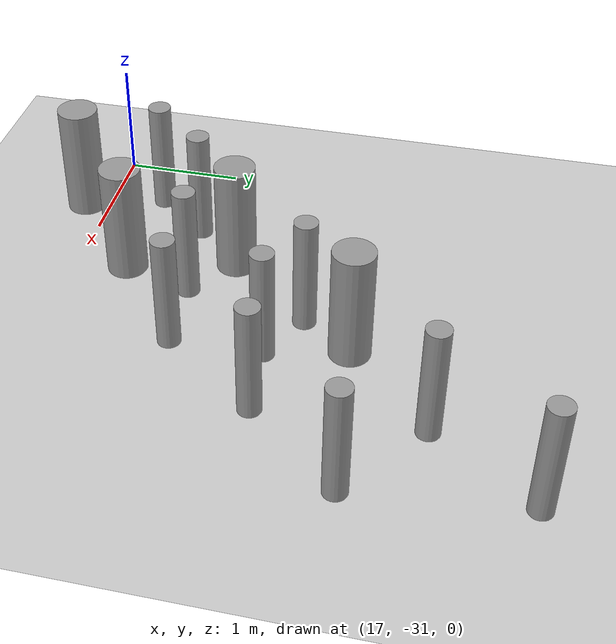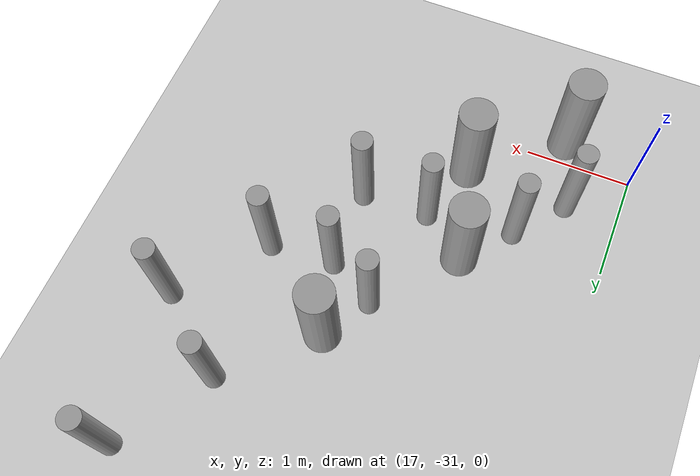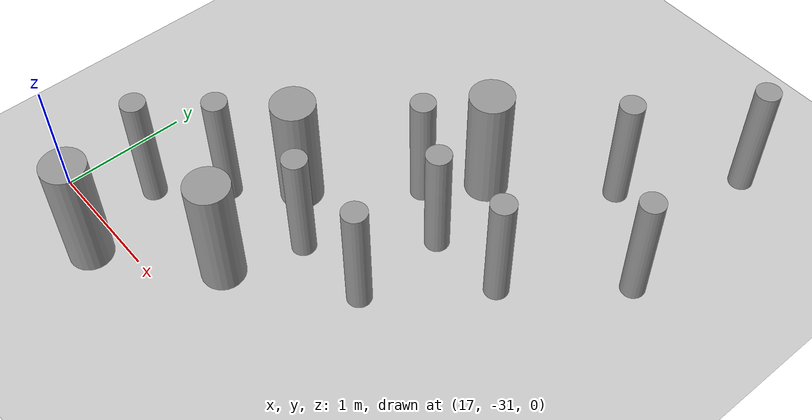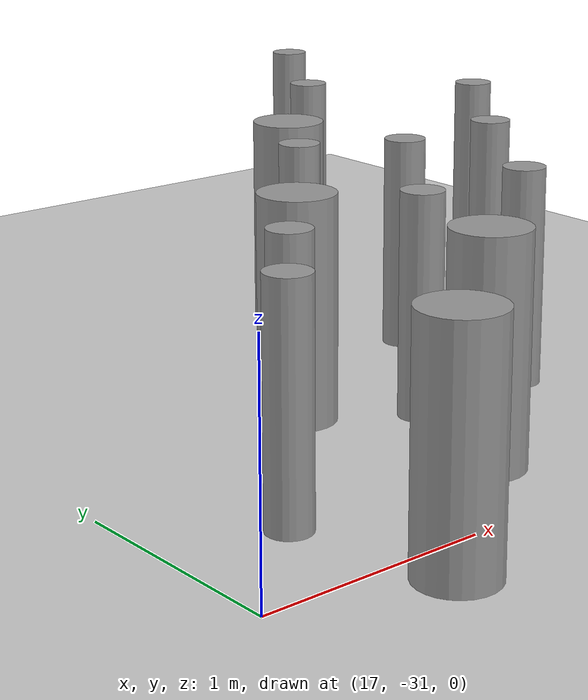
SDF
<sdf version="1.6">
 <world name="default">
  <model name="ground_plane">
   <static>1</static>
   <link name="link">
    <collision name="collision">
     <geometry><plane><normal>0 0 1</normal><size>100 100</size></plane></geometry>
     <surface><friction><ode><mu>100</mu><mu2>50</mu2></ode></friction></surface>
    </collision>
    <visual name="visual">
     <cast_shadows>0</cast_shadows>
     <geometry><plane><normal>0 0 1</normal><size>100 100</size></plane></geometry>
     <material>
      <script><uri>file://media/materials/scripts/gazebo.material</uri><name>Gazebo/Grey</name></script>
     </material>
    </visual>
   </link>
  </model>
  <model name="cyl_wall_clone_clone_1_clone_1_clone_clone_0_clone_1_clone_2">
   <link name="link_0">
    <pose>-2.73893 -0.366465 0 0 -0 0</pose>
    <inertial>
     <mass>0.0374993</mass>
     <inertia>
      <ixx>0.00321281</ixx>
      <ixy>0</ixy>
      <ixz>0</ixz>
      <iyy>0.00321281</iyy>
      <iyz>0</iyz>
      <izz>0.000175774</izz>
     </inertia>
    </inertial>
    <visual name="visual">
     <geometry><cylinder><radius>0.0968661</radius><length>1</length></cylinder></geometry>
     <material>
      <lighting>1</lighting>
      <script><uri>file://media/materials/scripts/gazebo.material</uri><name>Gazebo/Grey</name></script>
      <ambient>0.3 0.3 0.3 1</ambient>
      <diffuse>0.7 0.7 0.7 1</diffuse>
      <specular>0.01 0.01 0.01 1</specular>
      <emissive>0 0 0 1</emissive>
     </material>
    </visual>
    <collision name="collision">
     <geometry><cylinder><radius>0.096866</radius><length>1</length></cylinder></geometry>
     <surface>
      <friction>
       <ode><mu>1</mu><mu2>1</mu2><fdir1>0 0 0</fdir1><slip1>0</slip1><slip2>0</slip2></ode>
       <torsional>
        <coefficient>1</coefficient>
        <patch_radius>0</patch_radius>
        <surface_radius>0</surface_radius>
        <use_patch_radius>1</use_patch_radius>
        <ode><slip>0</slip></ode>
       </torsional>
      </friction>
      <bounce><restitution_coefficient>0</restitution_coefficient><threshold>1e+06</threshold></bounce>
      <contact>
       <collide_without_contact>0</collide_without_contact>
       <collide_without_contact_bitmask>1</collide_without_contact_bitmask>
       <collide_bitmask>1</collide_bitmask>
       <ode>
        <soft_cfm>0</soft_cfm>
        <soft_erp>0.2</soft_erp>
        <kp>1e+13</kp>
        <kd>1</kd>
        <max_vel>0.01</max_vel>
        <min_depth>0</min_depth>
       </ode>
       <bullet>
        <split_impulse>1</split_impulse>
        <split_impulse_penetration_threshold>-0.01</split_impulse_penetration_threshold>
        <soft_cfm>0</soft_cfm>
        <soft_erp>0.2</soft_erp>
        <kp>1e+13</kp>
        <kd>1</kd>
       </bullet>
      </contact>
     </surface>
    </collision>
   </link>
   <link name="link_0_clone">
    <pose>-1.73893 0.61877 0 0 -0 0</pose>
    <inertial>
     <mass>0.0374993</mass>
     <inertia>
      <ixx>0.00321281</ixx>
      <ixy>0</ixy>
      <ixz>0</ixz>
      <iyy>0.00321281</iyy>
      <iyz>0</iyz>
      <izz>0.000175774</izz>
     </inertia>
    </inertial>
    <visual name="visual">
     <geometry><cylinder><radius>0.0968661</radius><length>1</length></cylinder></geometry>
     <material>
      <lighting>1</lighting>
      <script><uri>file://media/materials/scripts/gazebo.material</uri><name>Gazebo/Grey</name></script>
      <ambient>0.3 0.3 0.3 1</ambient>
      <diffuse>0.7 0.7 0.7 1</diffuse>
      <specular>0.01 0.01 0.01 1</specular>
      <emissive>0 0 0 1</emissive>
      <shader type="pixel"/>
     </material>
    </visual>
    <collision name="collision">
     <geometry><cylinder><radius>0.096866</radius><length>1</length></cylinder></geometry>
     <surface>
      <friction>
       <ode><mu>1</mu><mu2>1</mu2><fdir1>0 0 0</fdir1><slip1>0</slip1><slip2>0</slip2></ode>
       <torsional>
        <coefficient>1</coefficient>
        <patch_radius>0</patch_radius>
        <surface_radius>0</surface_radius>
        <use_patch_radius>1</use_patch_radius>
        <ode><slip>0</slip></ode>
       </torsional>
      </friction>
      <bounce><restitution_coefficient>0</restitution_coefficient><threshold>1e+06</threshold></bounce>
      <contact>
       <collide_without_contact>0</collide_without_contact>
       <collide_without_contact_bitmask>1</collide_without_contact_bitmask>
       <collide_bitmask>1</collide_bitmask>
       <ode>
        <soft_cfm>0</soft_cfm>
        <soft_erp>0.2</soft_erp>
        <kp>1e+13</kp>
        <kd>1</kd>
        <max_vel>0.01</max_vel>
        <min_depth>0</min_depth>
       </ode>
       <bullet>
        <split_impulse>1</split_impulse>
        <split_impulse_penetration_threshold>-0.01</split_impulse_penetration_threshold>
        <soft_cfm>0</soft_cfm>
        <soft_erp>0.2</soft_erp>
        <kp>1e+13</kp>
        <kd>1</kd>
       </bullet>
      </contact>
     </surface>
    </collision>
   </link>
   <link name="link_0_clone_clone">
    <pose>-0.327073 0.143919 0 0 -0 0</pose>
    <inertial>
     <mass>0.0374993</mass>
     <inertia>
      <ixx>0.00321281</ixx>
      <ixy>0</ixy>
      <ixz>0</ixz>
      <iyy>0.00321281</iyy>
      <iyz>0</iyz>
      <izz>0.000175774</izz>
     </inertia>
    </inertial>
    <visual name="visual">
     <geometry><cylinder><radius>0.0968661</radius><length>1</length></cylinder></geometry>
     <material>
      <lighting>1</lighting>
      <script><uri>file://media/materials/scripts/gazebo.material</uri><name>Gazebo/Grey</name></script>
      <ambient>0.3 0.3 0.3 1</ambient>
      <diffuse>0.7 0.7 0.7 1</diffuse>
      <specular>0.01 0.01 0.01 1</specular>
      <emissive>0 0 0 1</emissive>
      <shader type="pixel"/>
     </material>
    </visual>
    <collision name="collision">
     <geometry><cylinder><radius>0.096866</radius><length>1</length></cylinder></geometry>
     <surface>
      <friction>
       <ode><mu>1</mu><mu2>1</mu2><fdir1>0 0 0</fdir1><slip1>0</slip1><slip2>0</slip2></ode>
       <torsional>
        <coefficient>1</coefficient>
        <patch_radius>0</patch_radius>
        <surface_radius>0</surface_radius>
        <use_patch_radius>1</use_patch_radius>
        <ode><slip>0</slip></ode>
       </torsional>
      </friction>
      <bounce><restitution_coefficient>0</restitution_coefficient><threshold>1e+06</threshold></bounce>
      <contact>
       <collide_without_contact>0</collide_without_contact>
       <collide_without_contact_bitmask>1</collide_without_contact_bitmask>
       <collide_bitmask>1</collide_bitmask>
       <ode>
        <soft_cfm>0</soft_cfm>
        <soft_erp>0.2</soft_erp>
        <kp>1e+13</kp>
        <kd>1</kd>
        <max_vel>0.01</max_vel>
        <min_depth>0</min_depth>
       </ode>
       <bullet>
        <split_impulse>1</split_impulse>
        <split_impulse_penetration_threshold>-0.01</split_impulse_penetration_threshold>
        <soft_cfm>0</soft_cfm>
        <soft_erp>0.2</soft_erp>
        <kp>1e+13</kp>
        <kd>1</kd>
       </bullet>
      </contact>
     </surface>
    </collision>
   </link>
   <link name="link_0_clone_clone_0">
    <pose>1.26107 -0.419359 0 0 -0 0</pose>
    <inertial>
     <mass>0.0374993</mass>
     <inertia>
      <ixx>0.00321281</ixx>
      <ixy>0</ixy>
      <ixz>0</ixz>
      <iyy>0.00321281</iyy>
      <iyz>0</iyz>
      <izz>0.000175774</izz>
     </inertia>
    </inertial>
    <visual name="visual">
     <geometry><cylinder><radius>0.0968661</radius><length>1</length></cylinder></geometry>
     <material>
      <lighting>1</lighting>
      <script><uri>file://media/materials/scripts/gazebo.material</uri><name>Gazebo/Grey</name></script>
      <ambient>0.3 0.3 0.3 1</ambient>
      <diffuse>0.7 0.7 0.7 1</diffuse>
      <specular>0.01 0.01 0.01 1</specular>
      <emissive>0 0 0 1</emissive>
      <shader type="pixel"/>
     </material>
    </visual>
    <collision name="collision">
     <geometry><cylinder><radius>0.096866</radius><length>1</length></cylinder></geometry>
     <surface>
      <friction>
       <ode><mu>1</mu><mu2>1</mu2><fdir1>0 0 0</fdir1><slip1>0</slip1><slip2>0</slip2></ode>
       <torsional>
        <coefficient>1</coefficient>
        <patch_radius>0</patch_radius>
        <surface_radius>0</surface_radius>
        <use_patch_radius>1</use_patch_radius>
        <ode><slip>0</slip></ode>
       </torsional>
      </friction>
      <bounce><restitution_coefficient>0</restitution_coefficient><threshold>1e+06</threshold></bounce>
      <contact>
       <collide_without_contact>0</collide_without_contact>
       <collide_without_contact_bitmask>1</collide_without_contact_bitmask>
       <collide_bitmask>1</collide_bitmask>
       <ode>
        <soft_cfm>0</soft_cfm>
        <soft_erp>0.2</soft_erp>
        <kp>1e+13</kp>
        <kd>1</kd>
        <max_vel>0.01</max_vel>
        <min_depth>0</min_depth>
       </ode>
       <bullet>
        <split_impulse>1</split_impulse>
        <split_impulse_penetration_threshold>-0.01</split_impulse_penetration_threshold>
        <soft_cfm>0</soft_cfm>
        <soft_erp>0.2</soft_erp>
        <kp>1e+13</kp>
        <kd>1</kd>
       </bullet>
      </contact>
     </surface>
    </collision>
   </link>
   <link name="link_0_clone_clone_1">
    <pose>-1.73893 -0.277168 0 0 -0 0</pose>
    <inertial>
     <mass>0.0374993</mass>
     <inertia>
      <ixx>0.00321281</ixx>
      <ixy>0</ixy>
      <ixz>0</ixz>
      <iyy>0.00321281</iyy>
      <iyz>0</iyz>
      <izz>0.000175774</izz>
     </inertia>
    </inertial>
    <visual name="visual">
     <geometry><cylinder><radius>0.0968661</radius><length>1</length></cylinder></geometry>
     <material>
      <lighting>1</lighting>
      <script><uri>file://media/materials/scripts/gazebo.material</uri><name>Gazebo/Grey</name></script>
      <ambient>0.3 0.3 0.3 1</ambient>
      <diffuse>0.7 0.7 0.7 1</diffuse>
      <specular>0.01 0.01 0.01 1</specular>
      <emissive>0 0 0 1</emissive>
      <shader type="pixel"/>
     </material>
    </visual>
    <collision name="collision">
     <geometry><cylinder><radius>0.096866</radius><length>1</length></cylinder></geometry>
     <surface>
      <friction>
       <ode><mu>1</mu><mu2>1</mu2><fdir1>0 0 0</fdir1><slip1>0</slip1><slip2>0</slip2></ode>
       <torsional>
        <coefficient>1</coefficient>
        <patch_radius>0</patch_radius>
        <surface_radius>0</surface_radius>
        <use_patch_radius>1</use_patch_radius>
        <ode><slip>0</slip></ode>
       </torsional>
      </friction>
      <bounce><restitution_coefficient>0</restitution_coefficient><threshold>1e+06</threshold></bounce>
      <contact>
       <collide_without_contact>0</collide_without_contact>
       <collide_without_contact_bitmask>1</collide_without_contact_bitmask>
       <collide_bitmask>1</collide_bitmask>
       <ode>
        <soft_cfm>0</soft_cfm>
        <soft_erp>0.2</soft_erp>
        <kp>1e+13</kp>
        <kd>1</kd>
        <max_vel>0.01</max_vel>
        <min_depth>0</min_depth>
       </ode>
       <bullet>
        <split_impulse>1</split_impulse>
        <split_impulse_penetration_threshold>-0.01</split_impulse_penetration_threshold>
        <soft_cfm>0</soft_cfm>
        <soft_erp>0.2</soft_erp>
        <kp>1e+13</kp>
        <kd>1</kd>
       </bullet>
      </contact>
     </surface>
    </collision>
   </link>
   <link name="link_0_clone_clone_2">
    <pose>-0.738934 0.593961 0 0 -0 0</pose>
    <inertial>
     <mass>0.0374993</mass>
     <inertia>
      <ixx>0.00321281</ixx>
      <ixy>0</ixy>
      <ixz>0</ixz>
      <iyy>0.00321281</iyy>
      <iyz>0</iyz>
      <izz>0.000175774</izz>
     </inertia>
    </inertial>
    <visual name="visual">
     <geometry><cylinder><radius>0.0968661</radius><length>1</length></cylinder></geometry>
     <material>
      <lighting>1</lighting>
      <script><uri>file://media/materials/scripts/gazebo.material</uri><name>Gazebo/Grey</name></script>
      <ambient>0.3 0.3 0.3 1</ambient>
      <diffuse>0.7 0.7 0.7 1</diffuse>
      <specular>0.01 0.01 0.01 1</specular>
      <emissive>0 0 0 1</emissive>
      <shader type="pixel"/>
     </material>
    </visual>
    <collision name="collision">
     <geometry><cylinder><radius>0.096866</radius><length>1</length></cylinder></geometry>
     <surface>
      <friction>
       <ode><mu>1</mu><mu2>1</mu2><fdir1>0 0 0</fdir1><slip1>0</slip1><slip2>0</slip2></ode>
       <torsional>
        <coefficient>1</coefficient>
        <patch_radius>0</patch_radius>
        <surface_radius>0</surface_radius>
        <use_patch_radius>1</use_patch_radius>
        <ode><slip>0</slip></ode>
       </torsional>
      </friction>
      <bounce><restitution_coefficient>0</restitution_coefficient><threshold>1e+06</threshold></bounce>
      <contact>
       <collide_without_contact>0</collide_without_contact>
       <collide_without_contact_bitmask>1</collide_without_contact_bitmask>
       <collide_bitmask>1</collide_bitmask>
       <ode>
        <soft_cfm>0</soft_cfm>
        <soft_erp>0.2</soft_erp>
        <kp>1e+13</kp>
        <kd>1</kd>
        <max_vel>0.01</max_vel>
        <min_depth>0</min_depth>
       </ode>
       <bullet>
        <split_impulse>1</split_impulse>
        <split_impulse_penetration_threshold>-0.01</split_impulse_penetration_threshold>
        <soft_cfm>0</soft_cfm>
        <soft_erp>0.2</soft_erp>
        <kp>1e+13</kp>
        <kd>1</kd>
       </bullet>
      </contact>
     </surface>
    </collision>
   </link>
   <link name="link_0_clone_clone_3">
    <pose>0.261066 0.624849 0 0 -0 0</pose>
    <inertial>
     <mass>0.0374993</mass>
     <inertia>
      <ixx>0.00321281</ixx>
      <ixy>0</ixy>
      <ixz>0</ixz>
      <iyy>0.00321281</iyy>
      <iyz>0</iyz>
      <izz>0.000175774</izz>
     </inertia>
    </inertial>
    <visual name="visual">
     <geometry><cylinder><radius>0.0968661</radius><length>1</length></cylinder></geometry>
     <material>
      <lighting>1</lighting>
      <script><uri>file://media/materials/scripts/gazebo.material</uri><name>Gazebo/Grey</name></script>
      <ambient>0.3 0.3 0.3 1</ambient>
      <diffuse>0.7 0.7 0.7 1</diffuse>
      <specular>0.01 0.01 0.01 1</specular>
      <emissive>0 0 0 1</emissive>
      <shader type="pixel"/>
     </material>
    </visual>
    <collision name="collision">
     <geometry><cylinder><radius>0.096866</radius><length>1</length></cylinder></geometry>
     <surface>
      <friction>
       <ode><mu>1</mu><mu2>1</mu2><fdir1>0 0 0</fdir1><slip1>0</slip1><slip2>0</slip2></ode>
       <torsional>
        <coefficient>1</coefficient>
        <patch_radius>0</patch_radius>
        <surface_radius>0</surface_radius>
        <use_patch_radius>1</use_patch_radius>
        <ode><slip>0</slip></ode>
       </torsional>
      </friction>
      <bounce><restitution_coefficient>0</restitution_coefficient><threshold>1e+06</threshold></bounce>
      <contact>
       <collide_without_contact>0</collide_without_contact>
       <collide_without_contact_bitmask>1</collide_without_contact_bitmask>
       <collide_bitmask>1</collide_bitmask>
       <ode>
        <soft_cfm>0</soft_cfm>
        <soft_erp>0.2</soft_erp>
        <kp>1e+13</kp>
        <kd>1</kd>
        <max_vel>0.01</max_vel>
        <min_depth>0</min_depth>
       </ode>
       <bullet>
        <split_impulse>1</split_impulse>
        <split_impulse_penetration_threshold>-0.01</split_impulse_penetration_threshold>
        <soft_cfm>0</soft_cfm>
        <soft_erp>0.2</soft_erp>
        <kp>1e+13</kp>
        <kd>1</kd>
       </bullet>
      </contact>
     </surface>
    </collision>
   </link>
   <link name="link_0_clone_clone_4">
    <pose>-0.239049 -0.353105 0 0 -0 0</pose>
    <inertial>
     <mass>0.0374993</mass>
     <inertia>
      <ixx>0.00321281</ixx>
      <ixy>0</ixy>
      <ixz>0</ixz>
      <iyy>0.00321281</iyy>
      <iyz>0</iyz>
      <izz>0.000175774</izz>
     </inertia>
    </inertial>
    <visual name="visual">
     <geometry><cylinder><radius>0.0968661</radius><length>1</length></cylinder></geometry>
     <material>
      <lighting>1</lighting>
      <script><uri>file://media/materials/scripts/gazebo.material</uri><name>Gazebo/Grey</name></script>
      <ambient>0.3 0.3 0.3 1</ambient>
      <diffuse>0.7 0.7 0.7 1</diffuse>
      <specular>0.01 0.01 0.01 1</specular>
      <emissive>0 0 0 1</emissive>
      <shader type="pixel"/>
     </material>
    </visual>
    <collision name="collision">
     <geometry><cylinder><radius>0.096866</radius><length>1</length></cylinder></geometry>
     <surface>
      <friction>
       <ode><mu>1</mu><mu2>1</mu2><fdir1>0 0 0</fdir1><slip1>0</slip1><slip2>0</slip2></ode>
       <torsional>
        <coefficient>1</coefficient>
        <patch_radius>0</patch_radius>
        <surface_radius>0</surface_radius>
        <use_patch_radius>1</use_patch_radius>
        <ode><slip>0</slip></ode>
       </torsional>
      </friction>
      <bounce><restitution_coefficient>0</restitution_coefficient><threshold>1e+06</threshold></bounce>
      <contact>
       <collide_without_contact>0</collide_without_contact>
       <collide_without_contact_bitmask>1</collide_without_contact_bitmask>
       <collide_bitmask>1</collide_bitmask>
       <ode>
        <soft_cfm>0</soft_cfm>
        <soft_erp>0.2</soft_erp>
        <kp>1e+13</kp>
        <kd>1</kd>
        <max_vel>0.01</max_vel>
        <min_depth>0</min_depth>
       </ode>
       <bullet>
        <split_impulse>1</split_impulse>
        <split_impulse_penetration_threshold>-0.01</split_impulse_penetration_threshold>
        <soft_cfm>0</soft_cfm>
        <soft_erp>0.2</soft_erp>
        <kp>1e+13</kp>
        <kd>1</kd>
       </bullet>
      </contact>
     </surface>
    </collision>
   </link>
   <link name="link_0_clone_clone_5">
    <pose>0.672792 0.143919 0 0 -0 0</pose>
    <inertial>
     <mass>0.0374993</mass>
     <inertia>
      <ixx>0.00321281</ixx>
      <ixy>0</ixy>
      <ixz>0</ixz>
      <iyy>0.00321281</iyy>
      <iyz>0</iyz>
      <izz>0.000175774</izz>
     </inertia>
    </inertial>
    <visual name="visual">
     <geometry><cylinder><radius>0.0968661</radius><length>1</length></cylinder></geometry>
     <material>
      <lighting>1</lighting>
      <script><uri>file://media/materials/scripts/gazebo.material</uri><name>Gazebo/Grey</name></script>
      <ambient>0.3 0.3 0.3 1</ambient>
      <diffuse>0.7 0.7 0.7 1</diffuse>
      <specular>0.01 0.01 0.01 1</specular>
      <emissive>0 0 0 1</emissive>
      <shader type="pixel"/>
     </material>
    </visual>
    <collision name="collision">
     <geometry><cylinder><radius>0.096866</radius><length>1</length></cylinder></geometry>
     <surface>
      <friction>
       <ode><mu>1</mu><mu2>1</mu2><fdir1>0 0 0</fdir1><slip1>0</slip1><slip2>0</slip2></ode>
       <torsional>
        <coefficient>1</coefficient>
        <patch_radius>0</patch_radius>
        <surface_radius>0</surface_radius>
        <use_patch_radius>1</use_patch_radius>
        <ode><slip>0</slip></ode>
       </torsional>
      </friction>
      <bounce><restitution_coefficient>0</restitution_coefficient><threshold>1e+06</threshold></bounce>
      <contact>
       <collide_without_contact>0</collide_without_contact>
       <collide_without_contact_bitmask>1</collide_without_contact_bitmask>
       <collide_bitmask>1</collide_bitmask>
       <ode>
        <soft_cfm>0</soft_cfm>
        <soft_erp>0.2</soft_erp>
        <kp>1e+13</kp>
        <kd>1</kd>
        <max_vel>0.01</max_vel>
        <min_depth>0</min_depth>
       </ode>
       <bullet>
        <split_impulse>1</split_impulse>
        <split_impulse_penetration_threshold>-0.01</split_impulse_penetration_threshold>
        <soft_cfm>0</soft_cfm>
        <soft_erp>0.2</soft_erp>
        <kp>1e+13</kp>
        <kd>1</kd>
       </bullet>
      </contact>
     </surface>
    </collision>
   </link>
   <link name="link_0_clone_clone_6">
    <pose>1.84596 -0.433423 0 0 -0 0</pose>
    <inertial>
     <mass>0.0374993</mass>
     <inertia>
      <ixx>0.00321281</ixx>
      <ixy>0</ixy>
      <ixz>0</ixz>
      <iyy>0.00321281</iyy>
      <iyz>0</iyz>
      <izz>0.000175774</izz>
     </inertia>
    </inertial>
    <visual name="visual">
     <geometry><cylinder><radius>0.0968661</radius><length>1</length></cylinder></geometry>
     <material>
      <lighting>1</lighting>
      <script><uri>file://media/materials/scripts/gazebo.material</uri><name>Gazebo/Grey</name></script>
      <ambient>0.3 0.3 0.3 1</ambient>
      <diffuse>0.7 0.7 0.7 1</diffuse>
      <specular>0.01 0.01 0.01 1</specular>
      <emissive>0 0 0 1</emissive>
      <shader type="pixel"/>
     </material>
    </visual>
    <collision name="collision">
     <geometry><cylinder><radius>0.096866</radius><length>1</length></cylinder></geometry>
     <surface>
      <friction>
       <ode><mu>1</mu><mu2>1</mu2><fdir1>0 0 0</fdir1><slip1>0</slip1><slip2>0</slip2></ode>
       <torsional>
        <coefficient>1</coefficient>
        <patch_radius>0</patch_radius>
        <surface_radius>0</surface_radius>
        <use_patch_radius>1</use_patch_radius>
        <ode><slip>0</slip></ode>
       </torsional>
      </friction>
      <bounce><restitution_coefficient>0</restitution_coefficient><threshold>1e+06</threshold></bounce>
      <contact>
       <collide_without_contact>0</collide_without_contact>
       <collide_without_contact_bitmask>1</collide_without_contact_bitmask>
       <collide_bitmask>1</collide_bitmask>
       <ode>
        <soft_cfm>0</soft_cfm>
        <soft_erp>0.2</soft_erp>
        <kp>1e+13</kp>
        <kd>1</kd>
        <max_vel>0.01</max_vel>
        <min_depth>0</min_depth>
       </ode>
       <bullet>
        <split_impulse>1</split_impulse>
        <split_impulse_penetration_threshold>-0.01</split_impulse_penetration_threshold>
        <soft_cfm>0</soft_cfm>
        <soft_erp>0.2</soft_erp>
        <kp>1e+13</kp>
        <kd>1</kd>
       </bullet>
      </contact>
     </surface>
    </collision>
   </link>
   <link name="link_1">
    <pose>-0.738934 -0.397931 0 0 -0 0</pose>
    <inertial>
     <mass>0.117398</mass>
     <inertia>
      <ixx>0.0106445</ixx>
      <ixy>0</ixy>
      <ixz>0</ixz>
      <iyy>0.0106445</iyy>
      <iyz>0</iyz>
      <izz>0.00172278</izz>
     </inertia>
    </inertial>
    <visual name="visual">
     <geometry><cylinder><radius>0.171317</radius><length>1</length></cylinder></geometry>
     <material>
      <lighting>1</lighting>
      <script><uri>file://media/materials/scripts/gazebo.material</uri><name>Gazebo/Grey</name></script>
      <ambient>0.3 0.3 0.3 1</ambient>
      <diffuse>0.7 0.7 0.7 1</diffuse>
      <specular>0.01 0.01 0.01 1</specular>
      <emissive>0 0 0 1</emissive>
     </material>
    </visual>
    <collision name="collision">
     <geometry><cylinder><radius>0.171317</radius><length>1</length></cylinder></geometry>
     <surface>
      <friction>
       <ode><mu>1</mu><mu2>1</mu2><fdir1>0 0 0</fdir1><slip1>0</slip1><slip2>0</slip2></ode>
       <torsional>
        <coefficient>1</coefficient>
        <patch_radius>0</patch_radius>
        <surface_radius>0</surface_radius>
        <use_patch_radius>1</use_patch_radius>
        <ode><slip>0</slip></ode>
       </torsional>
      </friction>
      <bounce><restitution_coefficient>0</restitution_coefficient><threshold>1e+06</threshold></bounce>
      <contact>
       <collide_without_contact>0</collide_without_contact>
       <collide_without_contact_bitmask>1</collide_without_contact_bitmask>
       <collide_bitmask>1</collide_bitmask>
       <ode>
        <soft_cfm>0</soft_cfm>
        <soft_erp>0.2</soft_erp>
        <kp>1e+13</kp>
        <kd>1</kd>
        <max_vel>0.01</max_vel>
        <min_depth>0</min_depth>
       </ode>
       <bullet>
        <split_impulse>1</split_impulse>
        <split_impulse_penetration_threshold>-0.01</split_impulse_penetration_threshold>
        <soft_cfm>0</soft_cfm>
        <soft_erp>0.2</soft_erp>
        <kp>1e+13</kp>
        <kd>1</kd>
       </bullet>
      </contact>
     </surface>
    </collision>
   </link>
   <link name="link_1_clone">
    <pose>0.697784 -0.380861 0 0 -0 0</pose>
    <inertial>
     <mass>0.117398</mass>
     <inertia>
      <ixx>0.0106445</ixx>
      <ixy>0</ixy>
      <ixz>0</ixz>
      <iyy>0.0106445</iyy>
      <iyz>0</iyz>
      <izz>0.00172278</izz>
     </inertia>
    </inertial>
    <visual name="visual">
     <geometry><cylinder><radius>0.171317</radius><length>1</length></cylinder></geometry>
     <material>
      <lighting>1</lighting>
      <script><uri>file://media/materials/scripts/gazebo.material</uri><name>Gazebo/Grey</name></script>
      <ambient>0.3 0.3 0.3 1</ambient>
      <diffuse>0.7 0.7 0.7 1</diffuse>
      <specular>0.01 0.01 0.01 1</specular>
      <emissive>0 0 0 1</emissive>
      <shader type="pixel"/>
     </material>
    </visual>
    <collision name="collision">
     <geometry><cylinder><radius>0.171317</radius><length>1</length></cylinder></geometry>
     <surface>
      <friction>
       <ode><mu>1</mu><mu2>1</mu2><fdir1>0 0 0</fdir1><slip1>0</slip1><slip2>0</slip2></ode>
       <torsional>
        <coefficient>1</coefficient>
        <patch_radius>0</patch_radius>
        <surface_radius>0</surface_radius>
        <use_patch_radius>1</use_patch_radius>
        <ode><slip>0</slip></ode>
       </torsional>
      </friction>
      <bounce><restitution_coefficient>0</restitution_coefficient><threshold>1e+06</threshold></bounce>
      <contact>
       <collide_without_contact>0</collide_without_contact>
       <collide_without_contact_bitmask>1</collide_without_contact_bitmask>
       <collide_bitmask>1</collide_bitmask>
       <ode>
        <soft_cfm>0</soft_cfm>
        <soft_erp>0.2</soft_erp>
        <kp>1e+13</kp>
        <kd>1</kd>
        <max_vel>0.01</max_vel>
        <min_depth>0</min_depth>
       </ode>
       <bullet>
        <split_impulse>1</split_impulse>
        <split_impulse_penetration_threshold>-0.01</split_impulse_penetration_threshold>
        <soft_cfm>0</soft_cfm>
        <soft_erp>0.2</soft_erp>
        <kp>1e+13</kp>
        <kd>1</kd>
       </bullet>
      </contact>
     </surface>
    </collision>
   </link>
   <link name="link_1_clone_0">
    <pose>1.26107 0.358974 0 0 -0 0</pose>
    <inertial>
     <mass>0.117398</mass>
     <inertia>
      <ixx>0.0106445</ixx>
      <ixy>0</ixy>
      <ixz>0</ixz>
      <iyy>0.0106445</iyy>
      <iyz>0</iyz>
      <izz>0.00172278</izz>
     </inertia>
    </inertial>
    <visual name="visual">
     <geometry><cylinder><radius>0.171317</radius><length>1</length></cylinder></geometry>
     <material>
      <lighting>1</lighting>
      <script><uri>file://media/materials/scripts/gazebo.material</uri><name>Gazebo/Grey</name></script>
      <ambient>0.3 0.3 0.3 1</ambient>
      <diffuse>0.7 0.7 0.7 1</diffuse>
      <specular>0.01 0.01 0.01 1</specular>
      <emissive>0 0 0 1</emissive>
      <shader type="pixel"/>
     </material>
    </visual>
    <collision name="collision">
     <geometry><cylinder><radius>0.171317</radius><length>1</length></cylinder></geometry>
     <surface>
      <friction>
       <ode><mu>1</mu><mu2>1</mu2><fdir1>0 0 0</fdir1><slip1>0</slip1><slip2>0</slip2></ode>
       <torsional>
        <coefficient>1</coefficient>
        <patch_radius>0</patch_radius>
        <surface_radius>0</surface_radius>
        <use_patch_radius>1</use_patch_radius>
        <ode><slip>0</slip></ode>
       </torsional>
      </friction>
      <bounce><restitution_coefficient>0</restitution_coefficient><threshold>1e+06</threshold></bounce>
      <contact>
       <collide_without_contact>0</collide_without_contact>
       <collide_without_contact_bitmask>1</collide_without_contact_bitmask>
       <collide_bitmask>1</collide_bitmask>
       <ode>
        <soft_cfm>0</soft_cfm>
        <soft_erp>0.2</soft_erp>
        <kp>1e+13</kp>
        <kd>1</kd>
        <max_vel>0.01</max_vel>
        <min_depth>0</min_depth>
       </ode>
       <bullet>
        <split_impulse>1</split_impulse>
        <split_impulse_penetration_threshold>-0.01</split_impulse_penetration_threshold>
        <soft_cfm>0</soft_cfm>
        <soft_erp>0.2</soft_erp>
        <kp>1e+13</kp>
        <kd>1</kd>
       </bullet>
      </contact>
     </surface>
    </collision>
   </link>
   <link name="link_1_clone_1">
    <pose>2.26107 0.143919 0 0 -0 0</pose>
    <inertial>
     <mass>0.117398</mass>
     <inertia>
      <ixx>0.0106445</ixx>
      <ixy>0</ixy>
      <ixz>0</ixz>
      <iyy>0.0106445</iyy>
      <iyz>0</iyz>
      <izz>0.00172278</izz>
     </inertia>
    </inertial>
    <visual name="visual">
     <geometry><cylinder><radius>0.171317</radius><length>1</length></cylinder></geometry>
     <material>
      <lighting>1</lighting>
      <script><uri>file://media/materials/scripts/gazebo.material</uri><name>Gazebo/Grey</name></script>
      <ambient>0.3 0.3 0.3 1</ambient>
      <diffuse>0.7 0.7 0.7 1</diffuse>
      <specular>0.01 0.01 0.01 1</specular>
      <emissive>0 0 0 1</emissive>
      <shader type="pixel"/>
     </material>
    </visual>
    <collision name="collision">
     <geometry><cylinder><radius>0.171317</radius><length>1</length></cylinder></geometry>
     <surface>
      <friction>
       <ode><mu>1</mu><mu2>1</mu2><fdir1>0 0 0</fdir1><slip1>0</slip1><slip2>0</slip2></ode>
       <torsional>
        <coefficient>1</coefficient>
        <patch_radius>0</patch_radius>
        <surface_radius>0</surface_radius>
        <use_patch_radius>1</use_patch_radius>
        <ode><slip>0</slip></ode>
       </torsional>
      </friction>
      <bounce><restitution_coefficient>0</restitution_coefficient><threshold>1e+06</threshold></bounce>
      <contact>
       <collide_without_contact>0</collide_without_contact>
       <collide_without_contact_bitmask>1</collide_without_contact_bitmask>
       <collide_bitmask>1</collide_bitmask>
       <ode>
        <soft_cfm>0</soft_cfm>
        <soft_erp>0.2</soft_erp>
        <kp>1e+13</kp>
        <kd>1</kd>
        <max_vel>0.01</max_vel>
        <min_depth>0</min_depth>
       </ode>
       <bullet>
        <split_impulse>1</split_impulse>
        <split_impulse_penetration_threshold>-0.01</split_impulse_penetration_threshold>
        <soft_cfm>0</soft_cfm>
        <soft_erp>0.2</soft_erp>
        <kp>1e+13</kp>
        <kd>1</kd>
       </bullet>
      </contact>
     </surface>
    </collision>
   </link>
   <static>1</static>
   <pose>18.9872 -29.3517 0.5 0 0 -2.24061</pose>
  </model>
 </world>
</sdf>
